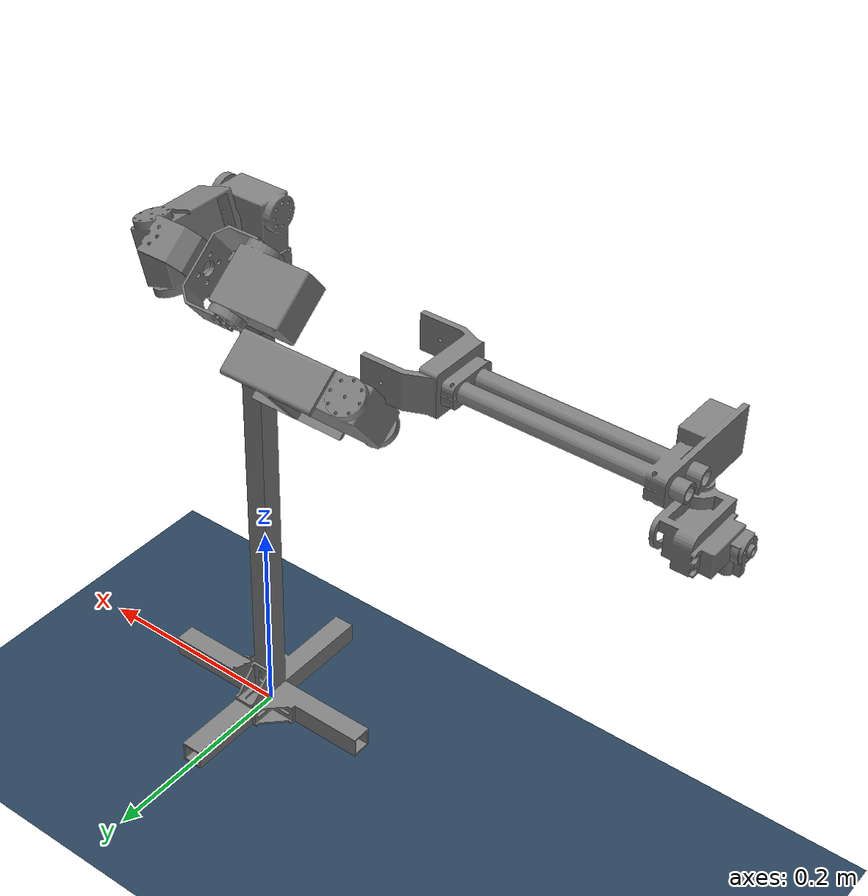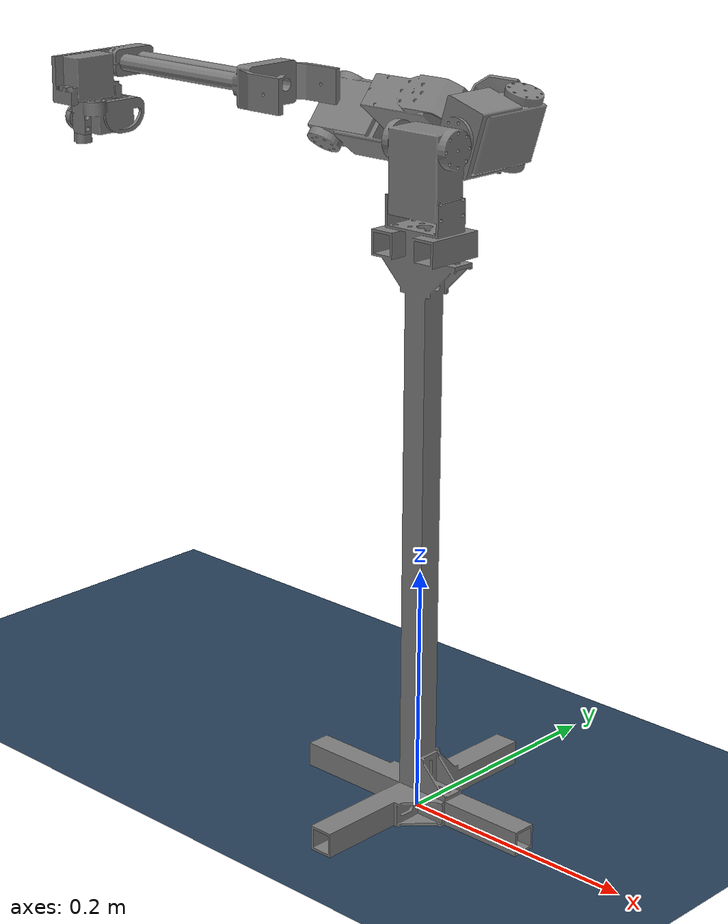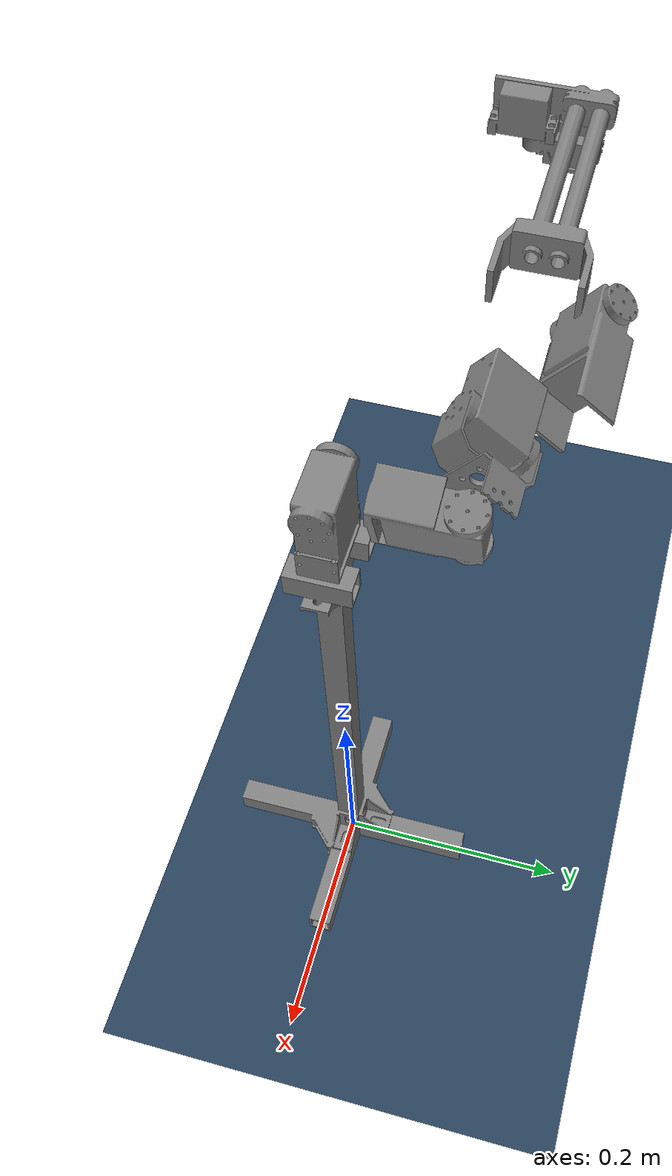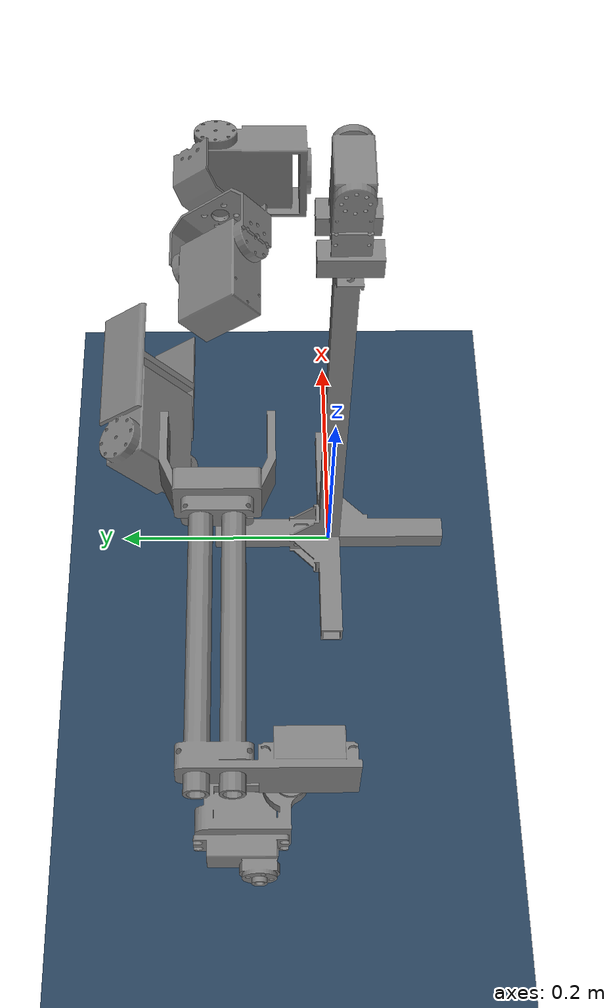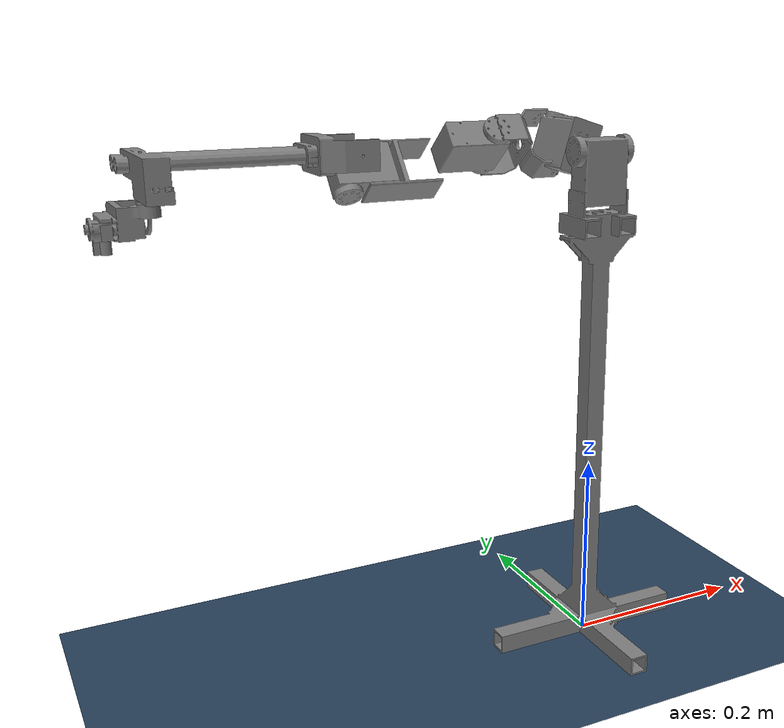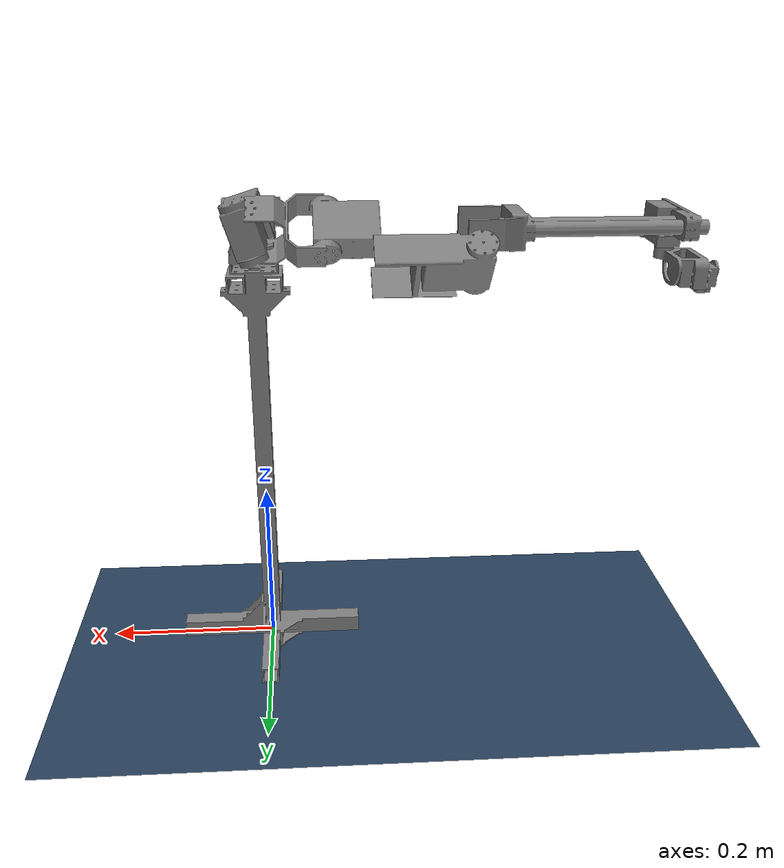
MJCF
<mujoco model="main_scene">
  <include file="asem_robot.xml"/>

  <visual>
    <global azimuth="120" elevation="-20"/>
  </visual>

  <asset>
    <texture type="2d" name="groundplane" builtin="checker" mark="edge"
             rgb1="0.2 0.3 0.4" rgb2="0.1 0.2 0.3" markrgb="0.8 0.8 0.8"
             width="300" height="300"/>
    <material name="groundplane" texture="groundplane" texuniform="true" texrepeat="5 5" reflectance="0.2"/>
  </asset>

  <worldbody>
    <light pos="0 0 1.5" dir="0 0 -1" directional="true"/>
    <geom name="floor_scene" size="0 0 0.05" type="plane" material="groundplane"/>
  </worldbody>
</mujoco>

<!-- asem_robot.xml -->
<mujoco model="asem">
  <compiler angle="radian" meshdir="assets" autolimits="true"/>
  <option integrator="implicitfast" timestep="0.001"/>

  <default>
    <default class="visual">
      <geom type="mesh" contype="0" conaffinity="0" group="2"/>
    </default>
    <default class="collision">
      <geom type="mesh" contype="1" conaffinity="1" group="3" rgba="0.8 0.2 0.2 0.25"/>
    </default>
  </default>

  <asset>
    <mesh name="asem_base_link" file="base_link.obj"/>
    <mesh name="asem_link1"     file="link1.obj"/>
    <mesh name="asem_link2"     file="link2.obj"/>
    <mesh name="asem_link3"     file="link3.obj"/>
    <mesh name="asem_link4"     file="link4.obj"/>
    <mesh name="asem_link5"     file="link5.obj"/>
    <mesh name="asem_link6"     file="link6.obj"/>
  </asset>

  <worldbody>
    <body name="asem_root" pos="0 0 0">

      <body name="base_link" pos="0 0 0">
        <inertial
          pos="0.000783610372245155 0.000780779155891816 0.22487687951109"
          mass="0.656798808945253"
          fullinertia="0.00352706468827847 0.00354410801464646 0.00022739890592658
                       -1.80141580287448e-06 8.68934291778745e-07 9.00707901436597e-07"/>
        <geom class="visual"    mesh="asem_base_link"/>
        <geom class="collision" mesh="asem_base_link"/>

        <!-- j1: base_link -> link1 -->
        <body name="link1"
              pos="0 0 0.532999999999992"
              euler="-1.57079632679455 0 -1.57079632679567">
          <inertial
            pos="-1.1192675258842e-11 1.53877785190812e-05 0.0699801166821439"
            mass="0.120852949012653"
            fullinertia="7.02975867816925e-05 4.76574284717077e-05 4.02294785409818e-05
                         9.99323124219071e-14 6.29006420014835e-14 -3.17750717415396e-08"/>
          <joint name="j1" type="hinge"
                 axis="0 0 -1"
                 range="-3.14 3.14"
                 damping="7" armature="0.0"/>
          <geom class="visual"    mesh="asem_link1"/>
          <geom class="collision" mesh="asem_link1"/>

          <!-- j2: link1 -> link2 -->
          <body name="link2"
                pos="0 0 0.093699999999975"
                euler="1.5707963267949 -1.5707963267949 0">
            <inertial
              pos="0.0792972044006984 -4.966580853731e-05 4.99999999999806e-05"
              mass="0.14035863699268"
              fullinertia="6.09160617441116e-05 6.39289714783637e-05 8.09923563529688e-05
                           -3.17736108122861e-08 -1.21140051073515e-20 -2.37554357215717e-21"/>
            <joint name="j2" type="hinge"
                   axis="0 0 1"
                   range="-3.14 3.14"
                   damping="7" armature="0.01"/>
            <geom class="visual"    mesh="asem_link2"/>
            <geom class="collision" mesh="asem_link2"/>

            <!-- j3: link2 -> link3 -->
            <body name="link3"
                  pos="0.076 -4.99999999999962e-05 4.99999999999806e-05"
                  euler="-1.5707963267949 0 0">
              <inertial
                pos="0.106202976965644 -1.38777878078145e-17 9.48819146900058e-06"
                mass="0.195921875509131"
                fullinertia="6.69647666943292e-05 0.000119643985450752 8.13405997060887e-05
                             6.1265784205265e-12 -3.17736108122398e-08 6.06860112751918e-10"/>
              <joint name="j3" type="hinge"
                     axis="0 0 -1"
                     range="-3.14 3.14"
                     damping="7" armature="0.01"/>
              <geom class="visual"    mesh="asem_link3"/>
              <geom class="collision" mesh="asem_link3"/>

              <!-- j4: link3 -> link4 -->
              <body name="link4"
                    pos="0.1524 0 0"
                    euler="0 0 0">
                <inertial
                  pos="0.121297780922475 -0.00228656782111138 -0.0138460602818061"
                  mass="0.178854495034261"
                  fullinertia="7.49286492698528e-05 0.000304798739532731 0.000258620428706312
                               -3.85497495108717e-07 7.55666513639472e-07 -4.09856411979482e-06"/>
                <joint name="j4" type="hinge"
                       axis="0 0 1"
                       range="-3.14 3.14"
                       damping="7" armature="0.01"/>
                <geom class="visual"    mesh="asem_link4"/>
                <geom class="collision" mesh="asem_link4"/>

                <!-- j5: link4 -> link5 -->
                <body name="link5"
                      pos="0.203415334104116 -0.0326559999999993 -0.0424779999999994"
                      euler="1.5707963267949 0 0">
                  <inertial
                    pos="0.017623450623141 0.0250720179485942 0.0147844406504887"
                    mass="0.0509977130540439"
                    fullinertia="1.37983244494247e-05 8.07033122032687e-06 1.7649492763302e-05
                                 -7.54684042513299e-07 -2.96781875492616e-07 -4.31943035783113e-07"/>
                  <joint name="j5" type="hinge"
                         axis="0 0 -1"
                         range="-3.14 3.14"
                         damping="2" armature="0.01"/>
                  <geom class="visual"    mesh="asem_link5"/>
                  <geom class="collision" mesh="asem_link5"/>

                  <!-- j6: link5 -> link6 -->
                  <body name="link6"
                        pos="0.0474750000000006 0.0179749999999995 0.0194250000000002"
                        euler="0 -1.5707963267949 0">
                    <inertialcr555
                      pos="0.0044743505779595 -7.97057662232925e-09 0.005009004270078"
                      mass="0.00796119611791654"
                      fullinertia="3.42403171450765e-07 6.13789450189992e-07 6.82449762710764e-07
                                   -3.56529906151535e-12 -1.29953843092014e-08 -1.10568785578683e-12"/>
                    <joint name="j6" type="hinge"
                           axis="0 0 -1"
                           range="-3.14 3.14"
                           damping="7" armature="0.01"/>
                    <geom class="visual"    mesh="asem_link6"/>
                    <geom class="collision" mesh="asem_link6"/>
                  </body>

                </body>
              </body>
            </body>
          </body>
        </body>

      </body>
    </body>
  </worldbody>

  <actuator>
    <motor name="m1" joint="j1" gear="1"/>
    <motor name="m2" joint="j2" gear="1"/>
    <motor name="m3" joint="j3" gear="1"/>
    <motor name="m4" joint="j4" gear="1"/>
    <motor name="m5" joint="j5" gear="1"/>
    <motor name="m6" joint="j6" gear="1"/>
  </actuator>
</mujoco>
